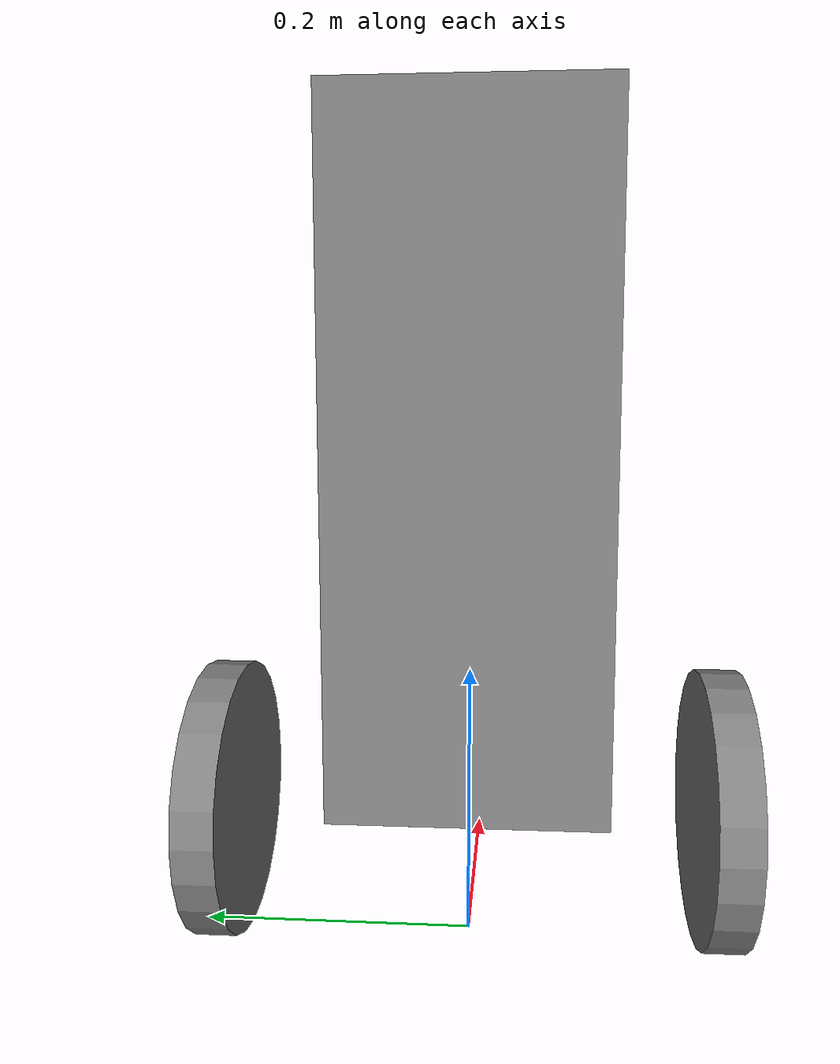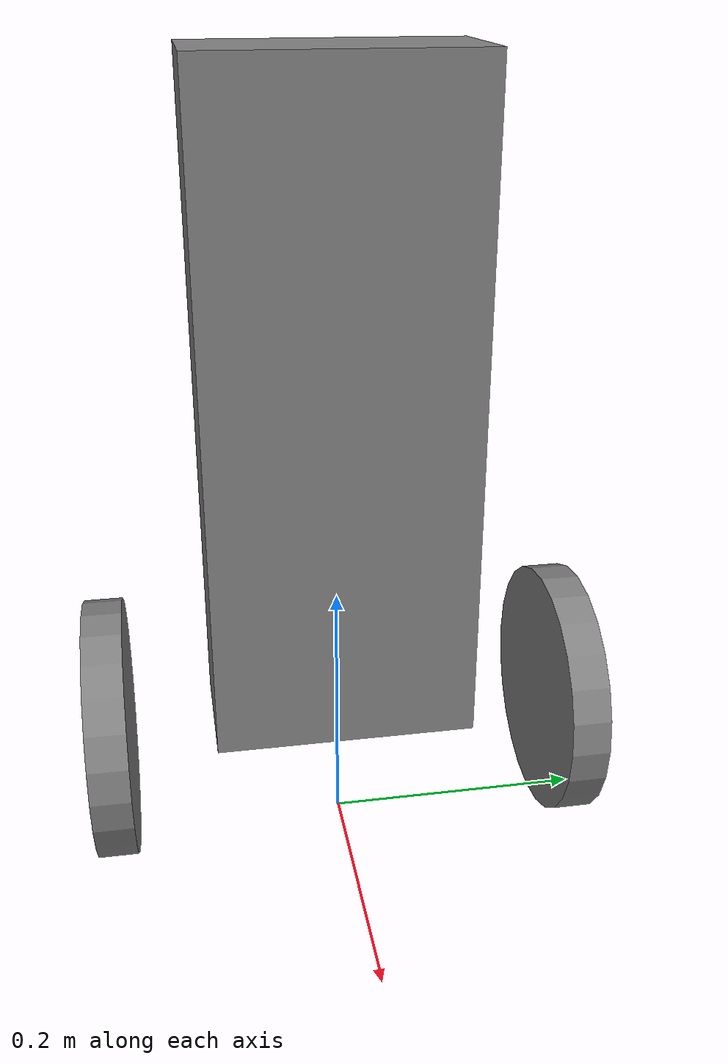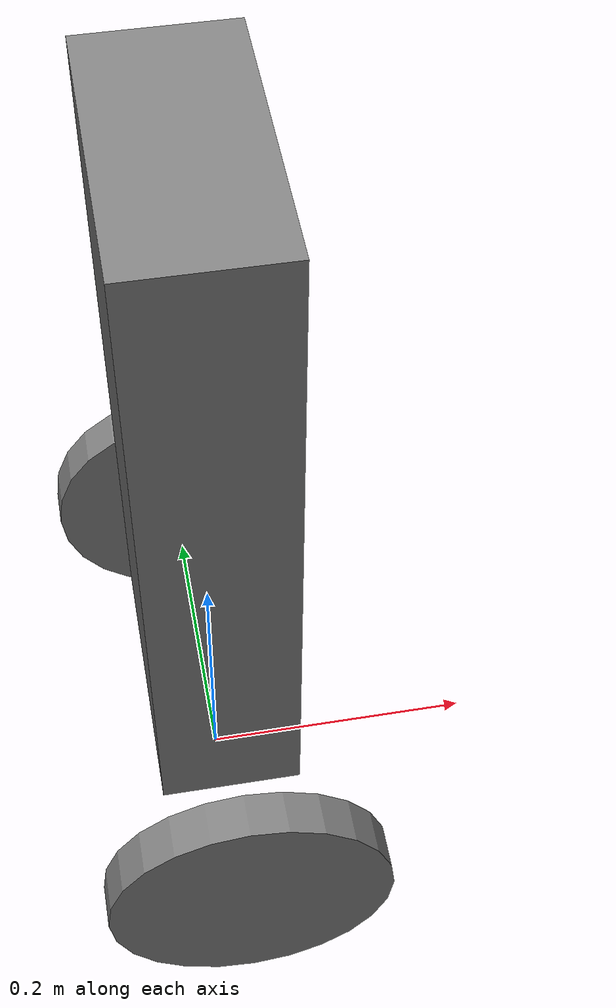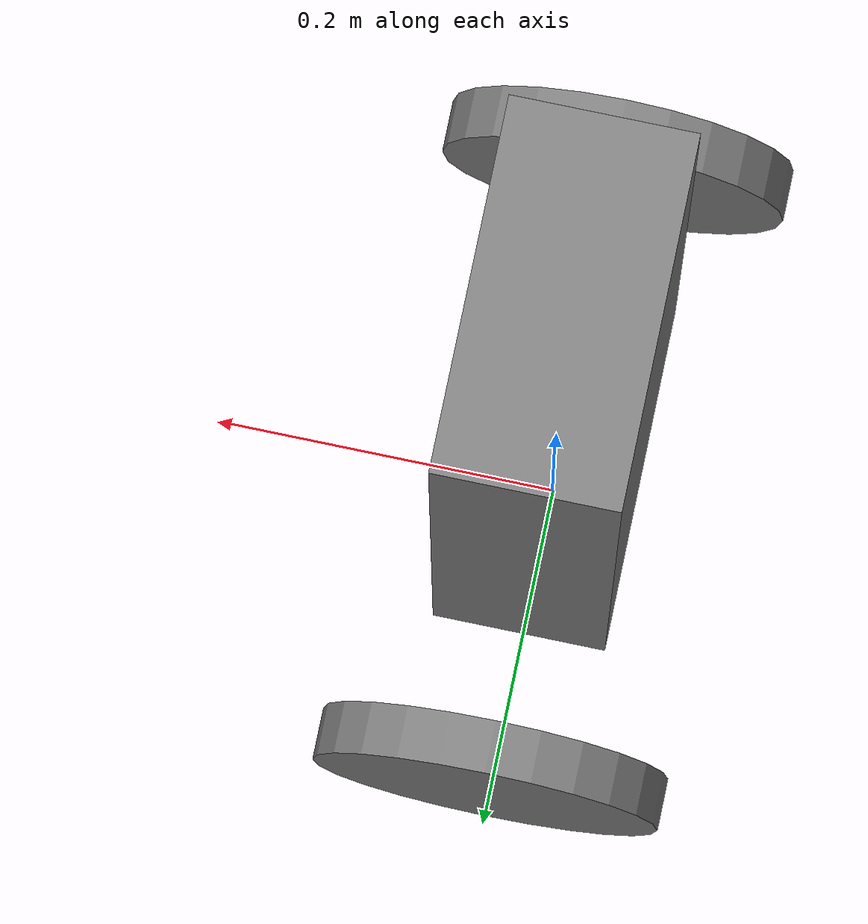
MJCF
<mujoco model="twip">
  <compiler angle="radian"/>

  <default>
    <default class="twip">
      <joint damping="0.02" frictionloss="0"/>
    </default>
    <default class="visual">
      <geom type="mesh" group="2" contype="0" conaffinity="0"/>
    </default>
    <default class="collision">
      <geom type="cylinder" group="3" mass="0" density="0"/>
    </default>
  </default>

  <worldbody>
    <body name="base" pos="0. 0 0.35" childclass="twip">
      <freejoint/>
      <geom size="0.05 0.1 0.25" quat="1 -1.73205e-07 -1.73205e-07 -1.73205e-07" mass="1." type="box"/>

      <body name="Wheel1__34__" pos="0 -0.18 -0.25" quat="0.707097 0.707116 -2.44949e-07 3.22436e-12">
        <inertial pos="0 0 0" quat="0.5 0.5 -0.5 0.5" mass="0.235619" diaginertia="0.0011781 0.00060672 0.00060672"/>
        <joint name="Revolute_joint1__33__" axis="0 0 -1"/>
        <geom size="0.1 0.015" quat="1 -1.73205e-07 -1.73205e-07 -1.73205e-07" type="cylinder"/>
      </body>

      <body name="Wheel2__36__" pos="0 0.18 -0.25" quat="-0.707098 -0.707116 -3.10189e-12 -2.44949e-07">
        <inertial pos="0 0 0" quat="0.5 0.5 -0.5 0.5" mass="0.235619" diaginertia="0.0011781 0.00060672 0.00060672"/>
        <joint name="Revolute_joint2__35__" axis="0 0 -1"/>
        <geom size="0.1 0.015" quat="1 -1.73205e-07 -1.73205e-07 -1.73205e-07" type="cylinder"/>
      </body>

    </body>
  </worldbody>

  <actuator>
    <motor name="left_wheel" joint="Revolute_joint1__33__" ctrlrange="-10 10"/>
    <motor name="right_wheel" joint="Revolute_joint2__35__" ctrlrange="-10 10"/>
  </actuator>

</mujoco>
